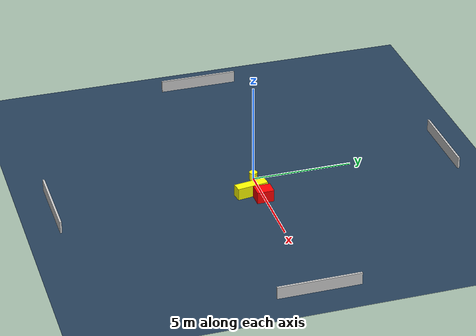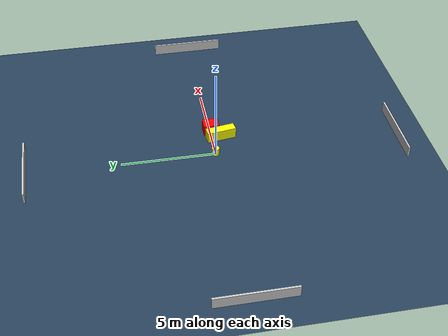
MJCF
<?xml version="1.0" ?>
<mujoco model="generated_environment">
  <option timestep="0.01" integrator="RK4" cone="elliptic"/>
  <default>
    <geom density="1"/>
  </default>
  <asset>
    <texture builtin="gradient" height="3072" name="skybox" rgb1="0.3 0.5 0.7" rgb2="0 0 0" type="skybox" width="512"/>
    <texture builtin="checker" height="300" name="groundplane" rgb1="0.2 0.3 0.4" rgb2="0.1 0.2 0.3" type="2d" width="300"/>
    <material name="groundplane" reflectance="0.2" texrepeat="5 5" texture="groundplane"/>
  </asset>
  <worldbody>
    <light dir="0 0 -1" directional="true" pos="0 0 1.5"/>
    <geom condim="3" friction="0.5 0.005 0.001" material="groundplane" name="floor" pos="0 0 0" size="0 0 0.05" type="plane"/>
    <body name="walls">
      <geom name="wall_1" condim="4" pos="-10.0 0.0 0.3" rgba="0.800000011920929 0.800000011920929 0.800000011920929 1.0" size="0.05 2.0 0.3" type="box"/>
      <geom name="wall_2" condim="4" pos="10.0 0.0 0.3" rgba="0.800000011920929 0.800000011920929 0.800000011920929 1.0" size="0.05 2.0 0.3" type="box"/>
      <geom name="wall_3" condim="4" pos="0.0 -10.0 0.3" rgba="0.800000011920929 0.800000011920929 0.800000011920929 1.0" size="2.0 0.05 0.3" type="box"/>
      <geom name="wall_4" condim="4" pos="0.0 10.0 0.3" rgba="0.800000011920929 0.800000011920929 0.800000011920929 1.0" size="2.0 0.05 0.3" type="box"/>
    </body>
    <body name="robot">
      <joint name="joint_x" type="slide" pos="0 0 0" axis="1 0 0"/>
      <joint name="joint_y" type="slide" pos="0 0 0" axis="0 1 0"/>
      <geom name="robot" type="cylinder" pos="0.0 0.0 0.2" size="0.2 0.2 0.0" mass="5.0" friction="1.0 0.005 0.0001" condim="4" rgba="1.0 1.0 0.0 1.0"/>
    </body>
    <body name="obstacle_1_movable">
      <geom name="obstacle_1_movable" condim="4" pos="1.309747158950684 -0.5132259461900807 0.3" euler="0 0 188.47167871664232" friction="0.0 0.005 0.001" rgba="1.0 1.0 0.0 1.0" size="0.23605818386465421 0.789321145040996 0.3" type="box" mass="0.1"/>
      <joint type="free"/>
    </body>
    <body name="obstacle_2_static">
      <geom name="obstacle_2_static" condim="4" pos="1.9152505015080765 -0.06942684905116836 0.3" euler="0 0 180.32810046355132" friction="0.0 0.005 0.001" rgba="1.0 0.0 0.0 1.0" size="0.33391143377400423 0.4219308882870731 0.3" type="box"/>
    </body>
  </worldbody>
  <actuator>
    <motor name="actuator_x" joint="joint_x" gear="1" ctrlrange="-1 1"/>
    <motor name="actuator_y" joint="joint_y" gear="1" ctrlrange="-1 1"/>
  </actuator>
</mujoco>
